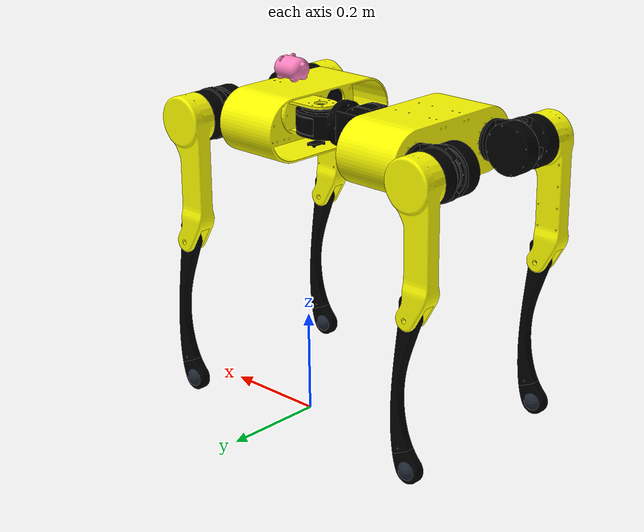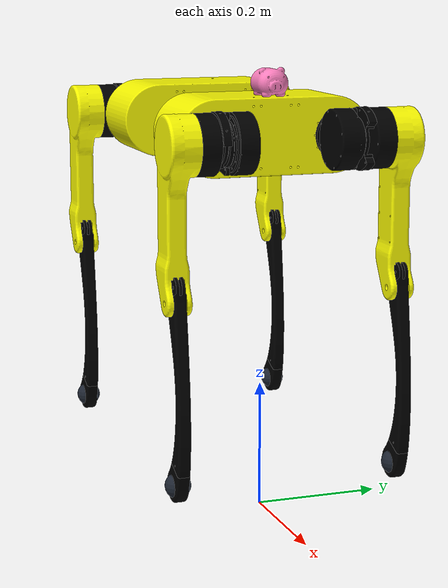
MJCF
<mujoco model="mark2">
  <compiler angle="radian" meshdir="../meshes/"/>

  <asset>
    <mesh name="base_link" content_type="model/stl" file="base_link.STL"/>
    <mesh name="FL_hip_rotor_Link" content_type="model/stl" file="FL_hip_rotor_Link.STL"/>
    <mesh name="FL_hip_Link" content_type="model/stl" file="FL_hip_Link.STL"/>
    <mesh name="FL_thigh_rotor_Link" content_type="model/stl" file="FL_thigh_rotor_Link.STL"/>
    <mesh name="FL_thigh_Link" content_type="model/stl" file="FL_thigh_Link.STL"/>
    <mesh name="FL_calf_rotor_Link" content_type="model/stl" file="FL_calf_rotor_Link.STL"/>
    <mesh name="FL_calf_Link" content_type="model/stl" file="FL_calf_Link.STL"/>
    <mesh name="FL_foot_Link" content_type="model/stl" file="FL_foot_Link.STL"/>
    <mesh name="FR_hip_rotor_Link" content_type="model/stl" file="FR_hip_rotor_Link.STL"/>
    <mesh name="FR_hip_Link" content_type="model/stl" file="FR_hip_Link.STL"/>
    <mesh name="FR_thigh_rotor_Link" content_type="model/stl" file="FR_thigh_rotor_Link.STL"/>
    <mesh name="FR_thigh_Link" content_type="model/stl" file="FR_thigh_Link.STL"/>
    <mesh name="FR_calf_rotor_Link" content_type="model/stl" file="FR_calf_rotor_Link.STL"/>
    <mesh name="FR_calf_Link" content_type="model/stl" file="FR_calf_Link.STL"/>
    <mesh name="FR_foot_Link" content_type="model/stl" file="FR_foot_Link.STL"/>
    <mesh name="imu_Link" content_type="model/stl" file="imu_Link.STL"/>
    <mesh name="yaw_spine_Link" content_type="model/stl" file="yaw_spine_Link.STL"/>
    <mesh name="yaw_spine_rotor_Link" content_type="model/stl" file="yaw_spine_rotor_Link.STL"/>
    <mesh name="pitch_spine_Link" content_type="model/stl" file="pitch_spine_Link.STL"/>
    <mesh name="pitch_spine_rotor_Link" content_type="model/stl" file="pitch_spine_rotor_Link.STL"/>
    <mesh name="roll_spine_Link" content_type="model/stl" file="roll_spine_Link.STL"/>
    <mesh name="roll_spine_rotor_Link" content_type="model/stl" file="roll_spine_rotor_Link.STL"/>
    <mesh name="R_body_Link" content_type="model/stl" file="R_body_Link.STL"/>
    <mesh name="RL_hip_rotor_Link" content_type="model/stl" file="RL_hip_rotor_Link.STL"/>
    <mesh name="RL_hip_Link" content_type="model/stl" file="RL_hip_Link.STL"/>
    <mesh name="RL_thigh_rotor_Link" content_type="model/stl" file="RL_thigh_rotor_Link.STL"/>
    <mesh name="RL_thigh_Link" content_type="model/stl" file="RL_thigh_Link.STL"/>
    <mesh name="RL_calf_rotor_Link" content_type="model/stl" file="RL_calf_rotor_Link.STL"/>
    <mesh name="RL_calf_Link" content_type="model/stl" file="RL_calf_Link.STL"/>
    <mesh name="RL_foot_Link" content_type="model/stl" file="RL_foot_Link.STL"/>
    <mesh name="RR_hip_rotor_Link" content_type="model/stl" file="RR_hip_rotor_Link.STL"/>
    <mesh name="RR_hip_Link" content_type="model/stl" file="RR_hip_Link.STL"/>
    <mesh name="RR_thigh_rotor_link" content_type="model/stl" file="RR_thigh_rotor_link.STL"/>
    <mesh name="RR_thigh_Link" content_type="model/stl" file="RR_thigh_Link.STL"/>
    <mesh name="RR_calf_rotor_Link" content_type="model/stl" file="RR_calf_rotor_Link.STL"/>
    <mesh name="RR_calf_Link" content_type="model/stl" file="RR_calf_Link.STL"/>
    <mesh name="RR_foot_Link" content_type="model/stl" file="RR_foot_Link.STL"/>
    <mesh name="pig_Link" content_type="model/stl" file="pig_Link.STL"/>
  </asset>

  <worldbody>
    <body name="trunk" pos="0 0 0.6">
      <freejoint name="root"/>
      <inertial pos="0 0 0" mass="10.5" diaginertia="0.1 0.15 0.05"/>
      <geom type="mesh" contype="0" conaffinity="0" group="1" density="0" rgba="1 1 0 1" mesh="base_link"/>
      <geom type="mesh" rgba="1 1 0 1" mesh="base_link"/>
      <geom pos="0.043225 -0.1 0" quat="1 0 0 0" type="mesh" contype="0" conaffinity="0" group="1" density="0" rgba="0 0 0 1" mesh="FL_hip_rotor_Link"/>
      <geom pos="0.043225 -0.1 0" quat="1 0 0 0" type="mesh" rgba="0 0 0 1" mesh="FL_hip_rotor_Link"/>
      <geom pos="0.043225 -0.1 0" quat="1 0 0 0" type="mesh" contype="0" conaffinity="0" group="1" density="0" rgba="0 0 0 1" mesh="FR_hip_rotor_Link"/>
      <geom pos="0.043225 -0.1 0" quat="1 0 0 0" type="mesh" rgba="0 0 0 1" mesh="FR_hip_rotor_Link"/>
      <geom pos="-0.025 0 -0.05" quat="1 0 0 0" type="mesh" contype="0" conaffinity="0" group="1" density="0" rgba="0 0 0 1" mesh="imu_Link"/>
      <geom pos="-0.025 0 -0.05" quat="1 0 0 0" type="mesh" rgba="0 0 0 1" mesh="imu_Link"/>
      <geom pos="0.0375 0 0.089" quat="1 0 0 0" type="mesh" contype="0" conaffinity="0" group="1" density="0" rgba="1 0.502 0.753 1" mesh="pig_Link"/>
      <geom pos="0.0375 0 0.089" quat="1 0 0 0" type="mesh" rgba="1 0.502 0.753 1" mesh="pig_Link"/>
      <body name="FL_hip_Link" pos="0.043225 0.1 6.9839e-05">
      <inertial pos="0.0167226 0.0724759 -0.0143714" quat="0.686827 0.620738 0.118435 0.359064" mass="0.833587" diaginertia="0.00266521 0.0025816 0.000757041"/>
      <joint name="FL_hip_joint" pos="0 0 0" axis="1 0 0" range="-1.5 1.5" actuatorfrcrange="-100 100"/>
      <geom type="mesh" contype="0" conaffinity="0" group="1" density="0" rgba="0 0 0 1" mesh="FL_hip_Link"/>
      <geom type="mesh" rgba="0 0 0 1" mesh="FL_hip_Link"/>
      <geom pos="0.083275 -0.019775 -6.9839e-05" quat="1 0 0 0" type="mesh" contype="0" conaffinity="0" group="1" density="0" rgba="0 0 0 1" mesh="FL_thigh_rotor_Link"/>
      <geom pos="0.083275 -0.019775 -6.9839e-05" quat="1 0 0 0" type="mesh" rgba="0 0 0 1" mesh="FL_thigh_rotor_Link"/>
      <body name="FL_thigh_Link" pos="0.083275 0.07955 -6.9839e-05">
        <inertial pos="0.0368585 0.0299135 -0.0345656" quat="0.458818 0.146371 0.262806 0.836059" mass="1.39039" diaginertia="0.0158883 0.0133728 0.00322123"/>
        <joint name="FL_thigh_joint" pos="0 0 0" axis="0 1 0" range="-2 2.2" actuatorfrcrange="-100 100"/>
        <geom type="mesh" contype="0" conaffinity="0" group="1" density="0" rgba="1 1 0 1" mesh="FL_thigh_Link"/>
        <geom type="mesh" rgba="1 1 0 1" mesh="FL_thigh_Link"/>
        <geom pos="0 -0.099325 0" quat="1 0 0 0" type="mesh" contype="0" conaffinity="0" group="1" density="0" rgba="0 0 0 1" mesh="FL_calf_rotor_Link"/>
        <geom pos="0 -0.099325 0" quat="1 0 0 0" type="mesh" rgba="0 0 0 1" mesh="FL_calf_rotor_Link"/>
        <body name="FL_calf_Link" pos="0 -0.002 -0.23">
          <inertial pos="-0.00632534 6.80328e-07 -0.126193" quat="0.698247 0.111576 0.111577 0.69825" mass="0.312743" diaginertia="0.00366716 0.00291553 0.000771333"/>
          <joint name="FL_calf_joint" pos="0 0 0" axis="0 1 0" range="-2.2 -0.7" actuatorfrcrange="-100 100"/>
          <geom type="mesh" contype="0" conaffinity="0" group="1" density="0" rgba="0 0 0 1" mesh="FL_calf_Link"/>
          <geom type="mesh" rgba="0 0 0 1" mesh="FL_calf_Link"/>
          <body name="FL_foot" pos="0 0 -0.279978">
            <geom type="mesh" contype="0" conaffinity="0" group="1" density="0" rgba="0 0 0 1" mesh="FL_foot_Link"/>
            <geom type="mesh" rgba="0 0 0 1" mesh="FL_foot_Link"/>
            <geom size="0.02" rgba="0.12 0.15 0.2 1"/>
          </body>
        </body>
      </body>
    </body>
    <body name="FR_hip_Link" pos="0.043225 -0.1 0">
      <inertial pos="0.0256141 0.048706 0.0124911" quat="0.652573 0.641696 0.385342 0.117839" mass="0.833587" diaginertia="0.00201576 0.00186752 0.00069145"/>
      <joint name="FR_hip_joint" pos="0 0 0" axis="1 0 0" range="-1.5 1.5" actuatorfrcrange="-100 100"/>
      <geom type="mesh" contype="0" conaffinity="0" group="1" density="0" rgba="0 0 0 1" mesh="FR_hip_Link"/>
      <geom type="mesh" rgba="0 0 0 1" mesh="FR_hip_Link"/>
      <geom pos="0.083275 0.019775 0" quat="1 0 0 0" type="mesh" contype="0" conaffinity="0" group="1" density="0" rgba="0 0 0 1" mesh="FR_thigh_rotor_Link"/>
      <geom pos="0.083275 0.019775 0" quat="1 0 0 0" type="mesh" rgba="0 0 0 1" mesh="FR_thigh_rotor_Link"/>
      <body name="FR_thigh_Link" pos="0.083275 -0.07955 0">
        <inertial pos="0.00611598 -0.00508937 -0.0299962" quat="0.751842 0.0811506 0.0466399 0.652666" mass="1.39039" diaginertia="0.0116303 0.0110257 0.00107412"/>
        <joint name="FR_thigh_joint" pos="0 0 0" axis="0 1 0" range="-2 2.2" actuatorfrcrange="-100 100"/>
        <geom type="mesh" contype="0" conaffinity="0" group="1" density="0" rgba="1 1 0 1" mesh="FR_thigh_Link"/>
        <geom type="mesh" rgba="1 1 0 1" mesh="FR_thigh_Link"/>
        <geom pos="0 0.042275 0" quat="1 0 0 0" type="mesh" contype="0" conaffinity="0" group="1" density="0" rgba="0 0 0 1" mesh="FR_calf_rotor_Link"/>
        <geom pos="0 0.042275 0" quat="1 0 0 0" type="mesh" rgba="0 0 0 1" mesh="FR_calf_rotor_Link"/>
        <body name="FR_calf_Link" pos="0 0.002 -0.23">
          <inertial pos="-0.00632534 6.8583e-07 -0.126193" quat="0.698247 0.111576 0.111577 0.69825" mass="0.312743" diaginertia="0.00366716 0.00291553 0.000771333"/>
          <joint name="FR_calf_joint" pos="0 0 0" axis="0 1 0" range="-2.2 -0.69" actuatorfrcrange="-100 100"/>
          <geom type="mesh" contype="0" conaffinity="0" group="1" density="0" rgba="0 0 0 1" mesh="FR_calf_Link"/>
          <geom type="mesh" rgba="0 0 0 1" mesh="FR_calf_Link"/>
          <body name="FR_foot" pos="0 0 -0.279978">
            <geom type="mesh" contype="0" conaffinity="0" group="1" density="0" rgba="0 0 0 1" mesh="FR_foot_Link"/>
            <geom type="mesh" rgba="0 0 0 1" mesh="FR_foot_Link"/>
            <geom size="0.02" rgba="0.12 0.15 0.2 1"/>
          </body>
        </body>
      </body>
    </body>
    <body name="yaw_spine_Link" pos="-0.03855 0 -0.005275">
      <inertial pos="-0.024439 9.63684e-05 0.00899637" quat="0.00238239 0.680492 -0.00120249 0.732751" mass="1.09354" diaginertia="0.00232687 0.00204435 0.000836545"/>
      <joint name="yaw_spine_joint" pos="0 0 0" axis="0 0 1" range="-1 1" actuatorfrcrange="-100 100"/>
      <geom type="mesh" contype="0" conaffinity="0" group="1" density="0" rgba="0 0 0 1" mesh="yaw_spine_Link"/>
      <geom type="mesh" rgba="0 0 0 1" mesh="yaw_spine_Link"/>
      <geom type="mesh" contype="0" conaffinity="0" group="1" density="0" rgba="0 0 0 1" mesh="yaw_spine_rotor_Link"/>
      <geom type="mesh" rgba="0 0 0 1" mesh="yaw_spine_rotor_Link"/>
      <body name="pitch_spine_Link" pos="-0.12 0.005275 0.005275">
        <inertial pos="-0.00987024 -0.00993991 0" quat="0.5494 0.5494 0.445152 0.445152" mass="0.872351" diaginertia="0.00115899 0.000899661 0.000603874"/>
        <joint name="pitch_spine_joint" pos="0 0 0" axis="0 1 0" range="-1.5 1.5" actuatorfrcrange="-100 100"/>
        <geom type="mesh" contype="0" conaffinity="0" group="1" density="0" rgba="0 0 0 1" mesh="pitch_spine_Link"/>
        <geom type="mesh" rgba="0 0 0 1" mesh="pitch_spine_Link"/>
        <geom type="mesh" contype="0" conaffinity="0" group="1" density="0" rgba="0 0 0 1" mesh="pitch_spine_rotor_Link"/>
        <geom type="mesh" rgba="0 0 0 1" mesh="pitch_spine_rotor_Link"/>
        <body name="roll_spine_Link" pos="-0.10528 -0.005275 0">
          <inertial pos="-0.0210093 -1.98101e-11 -0.0122133" quat="0.546227 0.546044 -0.449083 0.449218" mass="4.41424" diaginertia="0.0419903 0.0366817 0.016811"/>
          <joint name="roll_spine_joint" pos="0 0 0" axis="1 0 0" range="-2 2" actuatorfrcrange="-100 100"/>
          <geom type="mesh" contype="0" conaffinity="0" group="1" density="0" rgba="0 0 0 1" mesh="roll_spine_Link"/>
          <geom type="mesh" rgba="0 0 0 1" mesh="roll_spine_Link"/>
          <geom type="mesh" contype="0" conaffinity="0" group="1" density="0" rgba="0 0 0 1" mesh="roll_spine_rotor_Link"/>
          <geom type="mesh" rgba="0 0 0 1" mesh="roll_spine_rotor_Link"/>
          <geom pos="-0.022325 0 0" quat="1 0 0 0" type="mesh" contype="0" conaffinity="0" group="1" density="0" rgba="1 1 0 1" mesh="R_body_Link"/>
          <geom pos="-0.022325 0 0" quat="1 0 0 0" type="mesh" rgba="1 1 0 1" mesh="R_body_Link"/>
          <geom pos="-0.06555 0.1 6.9839e-05" quat="1 0 0 0" type="mesh" contype="0" conaffinity="0" group="1" density="0" rgba="0 0 0 1" mesh="RL_hip_rotor_Link"/>
          <geom pos="-0.06555 0.1 6.9839e-05" quat="1 0 0 0" type="mesh" rgba="0 0 0 1" mesh="RL_hip_rotor_Link"/>
          <geom pos="-0.06555 -0.1 0" quat="1 0 0 0" type="mesh" contype="0" conaffinity="0" group="1" density="0" rgba="0 0 0 1" mesh="RR_hip_rotor_Link"/>
          <geom pos="-0.06555 -0.1 0" quat="1 0 0 0" type="mesh" rgba="0 0 0 1" mesh="RR_hip_rotor_Link"/>
          <body name="RL_hip_Link" pos="-0.06555 0.1 6.9839e-05">
            <inertial pos="-0.0147635 -0.0488641 -0.0143714" quat="0.600266 0.691098 0.371747 0.154492" mass="0.833587" diaginertia="0.00214291 0.00196575 0.00067912"/>
            <joint name="RL_hip_joint" pos="0 0 0" axis="1 0 0" range="-1.5 1.5" actuatorfrcrange="-100 100"/>
            <geom type="mesh" contype="0" conaffinity="0" group="1" density="0" rgba="0 0 0 1" mesh="RL_hip_Link"/>
            <geom type="mesh" rgba="0 0 0 1" mesh="RL_hip_Link"/>
            <geom pos="-0.083275 -0.019775 -6.98388e-05" quat="1 0 0 0" type="mesh" contype="0" conaffinity="0" group="1" density="0" rgba="0 0 0 1" mesh="RL_thigh_rotor_Link"/>
            <geom pos="-0.083275 -0.019775 -6.98388e-05" quat="1 0 0 0" type="mesh" rgba="0 0 0 1" mesh="RL_thigh_rotor_Link"/>
            <body name="RL_thigh_Link" pos="-0.083275 0.07955 -6.9839e-05">
              <inertial pos="0.128968 0.124553 -0.0128216" quat="0.323029 0.236925 0.51369 0.758711" mass="1.39039" diaginertia="0.0777958 0.0729253 0.00572215"/>
              <joint name="RL_thigh_joint" pos="0 0 0" axis="0 1 0" range="-2 2.2" actuatorfrcrange="-100 100"/>
              <geom type="mesh" contype="0" conaffinity="0" group="1" density="0" rgba="1 1 0 1" mesh="RL_thigh_Link"/>
              <geom type="mesh" rgba="1 1 0 1" mesh="RL_thigh_Link"/>
              <geom pos="0 -0.316825 0" quat="1 0 0 0" type="mesh" contype="0" conaffinity="0" group="1" density="0" rgba="0 0 0 1" mesh="RL_calf_rotor_Link"/>
              <geom pos="0 -0.316825 0" quat="1 0 0 0" type="mesh" rgba="0 0 0 1" mesh="RL_calf_rotor_Link"/>
              <body name="RL_calf_Link" pos="0 -0.002 -0.23">
                <inertial pos="-0.00632534 6.87971e-07 -0.126193" quat="0.698247 0.111576 0.111577 0.69825" mass="0.312743" diaginertia="0.00366716 0.00291553 0.000771333"/>
                <joint name="RL_calf_joint" pos="0 0 0" axis="0 1 0" range="-2.2 -0.7" actuatorfrcrange="-100 100"/>
                <geom type="mesh" contype="0" conaffinity="0" group="1" density="0" rgba="0 0 0 1" mesh="RL_calf_Link"/>
                <geom type="mesh" rgba="0 0 0 1" mesh="RL_calf_Link"/>
                <body name="RL_foot" pos="0 0 -0.279978">
                  <geom type="mesh" contype="0" conaffinity="0" group="1" density="0" rgba="0 0 0 1" mesh="RL_foot_Link"/>
                  <geom type="mesh" rgba="0 0 0 1" mesh="RL_foot_Link"/>
                  <geom size="0.02" rgba="0.12 0.15 0.2 1"/>
                </body>
              </body>
            </body>
          </body>
          <body name="RR_hip_Link" pos="-0.06555 -0.1 0">
            <inertial pos="-0.00614017 -0.0721725 0.0124911" quat="0.722864 0.597422 0.288889 0.192608" mass="0.833587" diaginertia="0.00276318 0.0027178 0.000738703"/>
            <joint name="RR_hip_joint" pos="0 0 0" axis="1 0 0" range="-1.5 1.5" actuatorfrcrange="-100 100"/>
            <geom type="mesh" contype="0" conaffinity="0" group="1" density="0" rgba="0 0 0 1" mesh="RR_hip_Link"/>
            <geom type="mesh" rgba="0 0 0 1" mesh="RR_hip_Link"/>
            <geom pos="-0.083275 0.019775 0" quat="1 0 0 0" type="mesh" contype="0" conaffinity="0" group="1" density="0" rgba="0 0 0 1" mesh="RR_thigh_rotor_link"/>
            <geom pos="-0.083275 0.019775 0" quat="1 0 0 0" type="mesh" rgba="0 0 0 1" mesh="RR_thigh_rotor_link"/>
            <body name="RR_thigh_Link" pos="-0.083275 -0.07955 0">
              <inertial pos="-0.0148755 -0.00508937 -0.0288475" quat="0.664474 0.0147814 -0.0276146 0.746655" mass="1.39039" diaginertia="0.011464 0.0109291 0.00101354"/>
              <joint name="RR_thigh_joint" pos="0 0 0" axis="0 1 0" range="-2 2.2" actuatorfrcrange="-100 100"/>
              <geom type="mesh" contype="0" conaffinity="0" group="1" density="0" rgba="1 1 0 1" mesh="RR_thigh_Link"/>
              <geom type="mesh" rgba="1 1 0 1" mesh="RR_thigh_Link"/>
              <geom pos="0 0.042275 0" quat="1 0 0 0" type="mesh" contype="0" conaffinity="0" group="1" density="0" rgba="0 0 0 1" mesh="RR_calf_rotor_Link"/>
              <geom pos="0 0.042275 0" quat="1 0 0 0" type="mesh" rgba="0 0 0 1" mesh="RR_calf_rotor_Link"/>
              <body name="RR_calf_Link" pos="0 0.002 -0.23">
                <inertial pos="-0.00632534 6.87928e-07 -0.126193" quat="0.698247 0.111576 0.111577 0.69825" mass="0.312743" diaginertia="0.00366716 0.00291553 0.000771333"/>
                <joint name="RR_calf_joint" pos="0 0 0" axis="0 1 0" range="-2.2 -0.7" actuatorfrcrange="-100 100"/>
                <geom type="mesh" contype="0" conaffinity="0" group="1" density="0" rgba="0 0 0 1" mesh="RR_calf_Link"/>
                <geom type="mesh" rgba="0 0 0 1" mesh="RR_calf_Link"/>
                <body name="RR_foot" pos="0 0 -0.279978">
                  <geom type="mesh" contype="0" conaffinity="0" group="1" density="0" rgba="0 0 0 1" mesh="RR_foot_Link"/>
                  <geom type="mesh" rgba="0 0 0 1" mesh="RR_foot_Link"/>
                  <geom size="0.02" rgba="0.12 0.15 0.2 1"/>
                </body>
              </body>
            </body>
          </body>
        </body>
      </body>
    </body>
    </body>
  </worldbody>
</mujoco>
